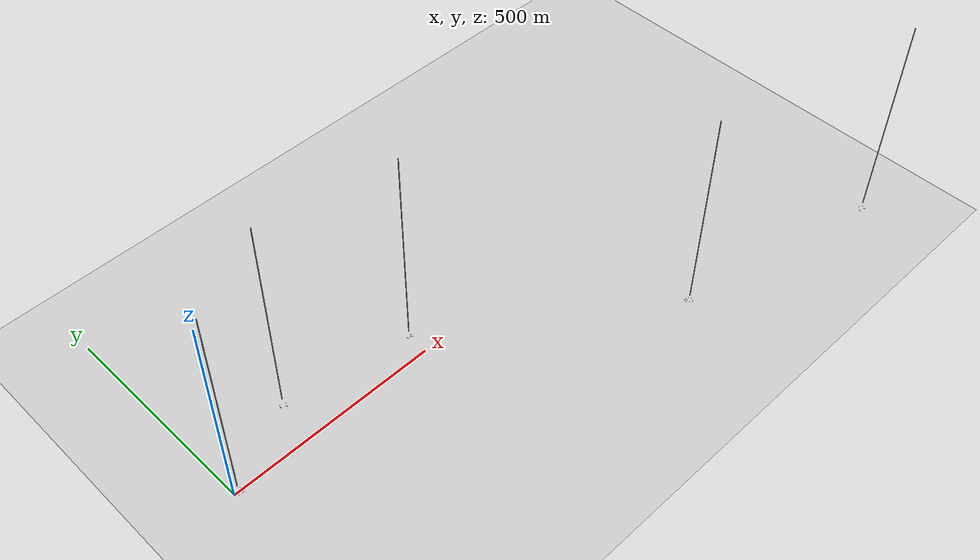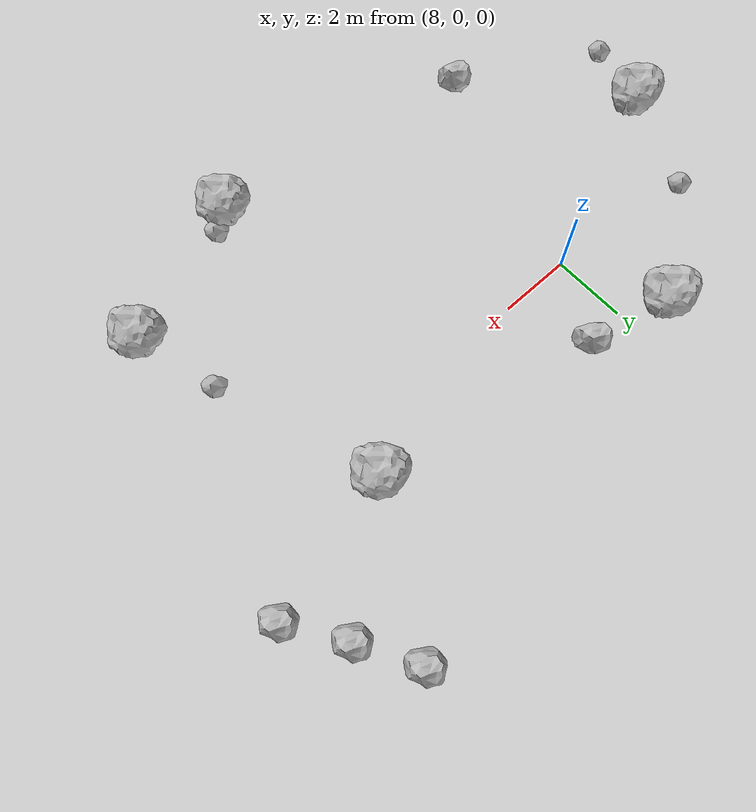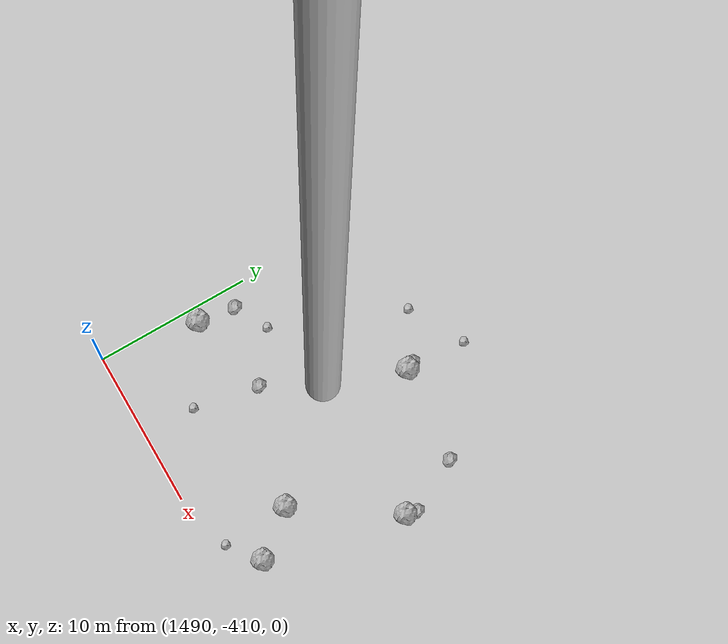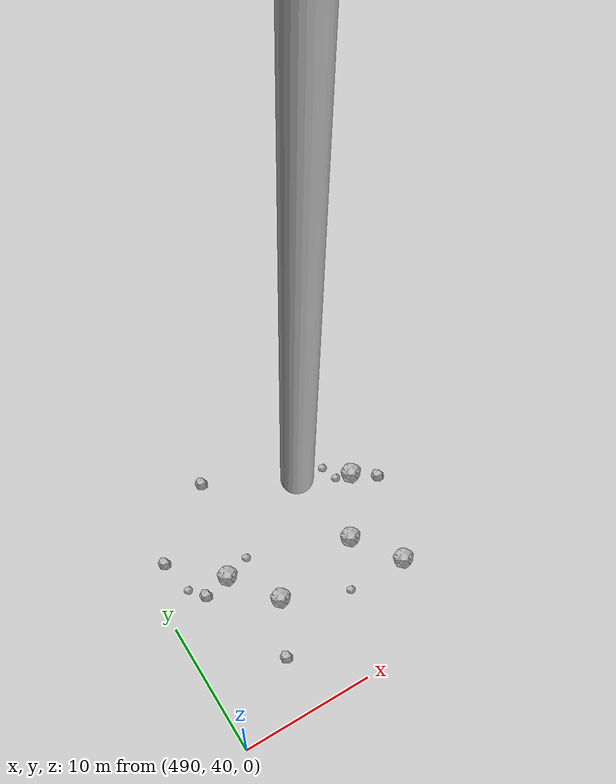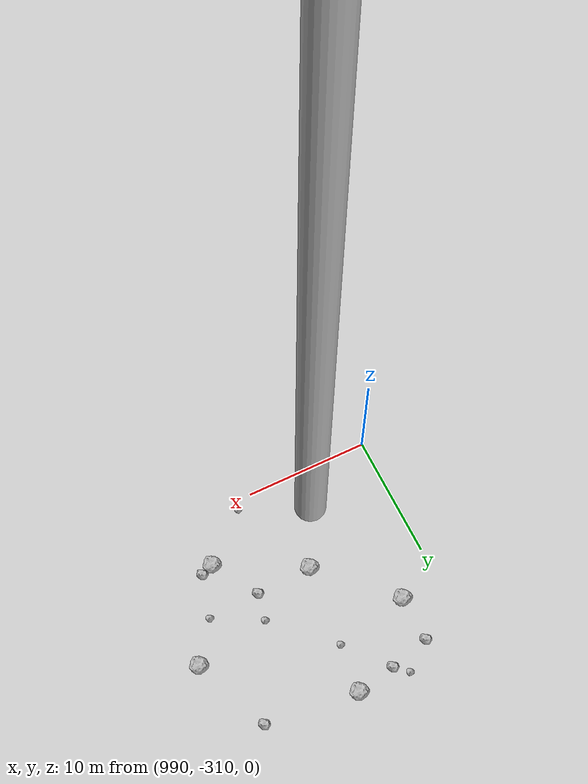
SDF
<?xml version="1.0" ?>
<sdf version="1.6">
  <world name="default">

    <include>
      <uri>model://custom_ground</uri>
    </include>

    <include>
      <uri>model://sun</uri>
    </include>

    <spherical_coordinates>
      <surface_model>EARTH_WGS84</surface_model>
      <latitude_deg>38.161479</latitude_deg>
      <longitude_deg>-122.454630</longitude_deg>
      <elevation>488.0</elevation>
      <heading_deg>90</heading_deg>
    </spherical_coordinates>

    <model name="rock1_0_0">
      <include>
        <uri>model://rock1</uri>
        <pose>6.878552019624888 2.563887295260024 0.5 0 0 0</pose>
      </include>
    </model>
    <model name="rock1_0_1">
      <include>
        <uri>model://rock1</uri>
        <pose>2.6409278544255543 -2.3622968119840015 0.5 0 0 0</pose>
      </include>
    </model>
    <model name="rock1_0_2">
      <include>
        <uri>model://rock1</uri>
        <pose>13.57423626528664 -7.366888080522269 0.5 0 0 0</pose>
      </include>
    </model>
    <model name="rock1_0_3">
      <include>
        <uri>model://rock1</uri>
        <pose>15.483504412664477 1.0716741729113455 0.5 0 0 0</pose>
      </include>
    </model>
    <model name="rock1_0_4">
      <include>
        <uri>model://rock1</uri>
        <pose>17.548800021996215 -5.739042391671112 0.5 0 0 0</pose>
      </include>
    </model>
    <model name="rock2_0_0">
      <include>
        <uri>model://rock2</uri>
        <pose>19.43197999454479 2.130272086964384 0.3 0 0 0</pose>
      </include>
    </model>
    <model name="rock2_0_1">
      <include>
        <uri>model://rock2</uri>
        <pose>5.904268603196094 -6.311359486827688 0.3 0 0 0</pose>
      </include>
    </model>
    <model name="rock2_0_2">
      <include>
        <uri>model://rock2</uri>
        <pose>18.504534774358174 3.5661157365428373 0.3 0 0 0</pose>
      </include>
    </model>
    <model name="rock2_0_3">
      <include>
        <uri>model://rock2</uri>
        <pose>17.669819956948515 5.039909348795042 0.3 0 0 0</pose>
      </include>
    </model>
    <model name="rock2_0_4">
      <include>
        <uri>model://rock2</uri>
        <pose>9.136354609493173 2.1091676606546272 0.3 0 0 0</pose>
      </include>
    </model>
    <model name="rock3_0_0">
      <include>
        <uri>model://rock3</uri>
        <pose>1.9908815236455912 -4.22846995532955 0.2 0 0 0</pose>
      </include>
    </model>
    <model name="rock3_0_1">
      <include>
        <uri>model://rock3</uri>
        <pose>14.154130225633326 -6.955207185265946 0.2 0 0 0</pose>
      </include>
    </model>
    <model name="rock3_0_2">
      <include>
        <uri>model://rock3</uri>
        <pose>16.962667398603138 -3.4221038509491226 0.2 0 0 0</pose>
      </include>
    </model>
    <model name="rock3_0_3">
      <include>
        <uri>model://rock3</uri>
        <pose>3.8190586870892274 0.44384562119414817 0.2 0 0 0</pose>
      </include>
    </model>
    <model name="rock3_0_4">
      <include>
        <uri>model://rock3</uri>
        <pose>17.276897302127328 -6.35914447149929 0.2 0 0 0</pose>
      </include>
    </model>
    <model name="rock1_1_0">
      <include>
        <uri>model://rock1</uri>
        <pose>206.4276627902904 99.77986212110447 0.5 0 0 0</pose>
      </include>
    </model>
    <model name="rock1_1_1">
      <include>
        <uri>model://rock1</uri>
        <pose>191.83948922866674 96.35535446125041 0.5 0 0 0</pose>
      </include>
    </model>
    <model name="rock1_1_2">
      <include>
        <uri>model://rock1</uri>
        <pose>203.48871534612329 91.00219823767296 0.5 0 0 0</pose>
      </include>
    </model>
    <model name="rock1_1_3">
      <include>
        <uri>model://rock1</uri>
        <pose>204.02831747094905 91.04204706046832 0.5 0 0 0</pose>
      </include>
    </model>
    <model name="rock1_1_4">
      <include>
        <uri>model://rock1</uri>
        <pose>192.19813956282746 98.38751318358752 0.5 0 0 0</pose>
      </include>
    </model>
    <model name="rock2_1_0">
      <include>
        <uri>model://rock2</uri>
        <pose>196.31038139833458 107.6514313217481 0.3 0 0 0</pose>
      </include>
    </model>
    <model name="rock2_1_1">
      <include>
        <uri>model://rock2</uri>
        <pose>207.73361639493018 100.36042247315325 0.3 0 0 0</pose>
      </include>
    </model>
    <model name="rock2_1_2">
      <include>
        <uri>model://rock2</uri>
        <pose>201.73494851251195 93.40523177852965 0.3 0 0 0</pose>
      </include>
    </model>
    <model name="rock2_1_3">
      <include>
        <uri>model://rock2</uri>
        <pose>203.00221048575588 104.26626786565183 0.3 0 0 0</pose>
      </include>
    </model>
    <model name="rock2_1_4">
      <include>
        <uri>model://rock2</uri>
        <pose>193.89066484362866 103.58921674458087 0.3 0 0 0</pose>
      </include>
    </model>
    <model name="rock3_1_0">
      <include>
        <uri>model://rock3</uri>
        <pose>193.5349950501354 94.43367804269474 0.2 0 0 0</pose>
      </include>
    </model>
    <model name="rock3_1_1">
      <include>
        <uri>model://rock3</uri>
        <pose>204.11128606224506 98.54829228431794 0.2 0 0 0</pose>
      </include>
    </model>
    <model name="rock3_1_2">
      <include>
        <uri>model://rock3</uri>
        <pose>203.42427191449795 103.69407037750231 0.2 0 0 0</pose>
      </include>
    </model>
    <model name="rock3_1_3">
      <include>
        <uri>model://rock3</uri>
        <pose>195.95660143977534 91.34247696274987 0.2 0 0 0</pose>
      </include>
    </model>
    <model name="rock3_1_4">
      <include>
        <uri>model://rock3</uri>
        <pose>207.31544784735746 95.80771486515252 0.2 0 0 0</pose>
      </include>
    </model>
    <model name="rock1_2_0">
      <include>
        <uri>model://rock1</uri>
        <pose>506.7878060705362 46.005005437053306 0.5 0 0 0</pose>
      </include>
    </model>
    <model name="rock1_2_1">
      <include>
        <uri>model://rock1</uri>
        <pose>506.93173383931753 53.48468951199003 0.5 0 0 0</pose>
      </include>
    </model>
    <model name="rock1_2_2">
      <include>
        <uri>model://rock1</uri>
        <pose>504.33396655615286 49.34847581197593 0.5 0 0 0</pose>
      </include>
    </model>
    <model name="rock1_2_3">
      <include>
        <uri>model://rock1</uri>
        <pose>495.17575641088644 51.43292749144444 0.5 0 0 0</pose>
      </include>
    </model>
    <model name="rock1_2_4">
      <include>
        <uri>model://rock1</uri>
        <pose>497.63973720359485 48.0500998300487 0.5 0 0 0</pose>
      </include>
    </model>
    <model name="rock2_2_0">
      <include>
        <uri>model://rock2</uri>
        <pose>493.0959596716754 51.00865559182785 0.3 0 0 0</pose>
      </include>
    </model>
    <model name="rock2_2_1">
      <include>
        <uri>model://rock2</uri>
        <pose>497.03122946455704 58.50899843398451 0.3 0 0 0</pose>
      </include>
    </model>
    <model name="rock2_2_2">
      <include>
        <uri>model://rock2</uri>
        <pose>491.7012085736961 54.616835019929376 0.3 0 0 0</pose>
      </include>
    </model>
    <model name="rock2_2_3">
      <include>
        <uri>model://rock2</uri>
        <pose>508.5163738359742 52.373572569025235 0.3 0 0 0</pose>
      </include>
    </model>
    <model name="rock2_2_4">
      <include>
        <uri>model://rock2</uri>
        <pose>495.75820809370197 44.1810875995795 0.3 0 0 0</pose>
      </include>
    </model>
    <model name="rock3_2_0">
      <include>
        <uri>model://rock3</uri>
        <pose>502.2930893558063 46.00141058921412 0.2 0 0 0</pose>
      </include>
    </model>
    <model name="rock3_2_1">
      <include>
        <uri>model://rock3</uri>
        <pose>492.18563083324614 52.00170631025976 0.2 0 0 0</pose>
      </include>
    </model>
    <model name="rock3_2_2">
      <include>
        <uri>model://rock3</uri>
        <pose>505.77535080936985 53.78468258327662 0.2 0 0 0</pose>
      </include>
    </model>
    <model name="rock3_2_3">
      <include>
        <uri>model://rock3</uri>
        <pose>505.33847308833117 54.95091476032771 0.2 0 0 0</pose>
      </include>
    </model>
    <model name="rock3_2_4">
      <include>
        <uri>model://rock3</uri>
        <pose>497.0178305312344 51.94226979534844 0.2 0 0 0</pose>
      </include>
    </model>
    <model name="rock1_3_0">
      <include>
        <uri>model://rock1</uri>
        <pose>998.5477161646663 -302.3984304392621 0.5 0 0 0</pose>
      </include>
    </model>
    <model name="rock1_3_1">
      <include>
        <uri>model://rock1</uri>
        <pose>993.2617585965145 -297.05420571353363 0.5 0 0 0</pose>
      </include>
    </model>
    <model name="rock1_3_2">
      <include>
        <uri>model://rock1</uri>
        <pose>999.5920459872776 -292.009861950625 0.5 0 0 0</pose>
      </include>
    </model>
    <model name="rock1_3_3">
      <include>
        <uri>model://rock1</uri>
        <pose>1009.4813178595598 -299.0688923639141 0.5 0 0 0</pose>
      </include>
    </model>
    <model name="rock1_3_4">
      <include>
        <uri>model://rock1</uri>
        <pose>1005.2336724445644 -305.89896818119234 0.5 0 0 0</pose>
      </include>
    </model>
    <model name="rock2_3_0">
      <include>
        <uri>model://rock2</uri>
        <pose>996.3947390028851 -292.5950395594092 0.3 0 0 0</pose>
      </include>
    </model>
    <model name="rock2_3_1">
      <include>
        <uri>model://rock2</uri>
        <pose>1006.2191991575405 -305.5474132721965 0.3 0 0 0</pose>
      </include>
    </model>
    <model name="rock2_3_2">
      <include>
        <uri>model://rock2</uri>
        <pose>993.1525482456212 -293.40008466388645 0.3 0 0 0</pose>
      </include>
    </model>
    <model name="rock2_3_3">
      <include>
        <uri>model://rock2</uri>
        <pose>1006.979931407565 -292.9145578374406 0.3 0 0 0</pose>
      </include>
    </model>
    <model name="rock2_3_4">
      <include>
        <uri>model://rock2</uri>
        <pose>1003.003900152544 -302.292344552287 0.3 0 0 0</pose>
      </include>
    </model>
    <model name="rock3_3_0">
      <include>
        <uri>model://rock3</uri>
        <pose>1007.1513034505491 -302.1581356418597 0.2 0 0 0</pose>
      </include>
    </model>
    <model name="rock3_3_1">
      <include>
        <uri>model://rock3</uri>
        <pose>1001.3942914111585 -309.28088839128014 0.2 0 0 0</pose>
      </include>
    </model>
    <model name="rock3_3_2">
      <include>
        <uri>model://rock3</uri>
        <pose>1003.4243870370933 -300.1471505722264 0.2 0 0 0</pose>
      </include>
    </model>
    <model name="rock3_3_3">
      <include>
        <uri>model://rock3</uri>
        <pose>995.3825859138761 -291.718759209294 0.2 0 0 0</pose>
      </include>
    </model>
    <model name="rock3_3_4">
      <include>
        <uri>model://rock3</uri>
        <pose>999.1147310560991 -295.91489439217975 0.2 0 0 0</pose>
      </include>
    </model>
    <model name="rock1_4_0">
      <include>
        <uri>model://rock1</uri>
        <pose>1507.6607883784307 -398.4442829568897 0.5 0 0 0</pose>
      </include>
    </model>
    <model name="rock1_4_1">
      <include>
        <uri>model://rock1</uri>
        <pose>1503.581351240258 -404.66690547925697 0.5 0 0 0</pose>
      </include>
    </model>
    <model name="rock1_4_2">
      <include>
        <uri>model://rock1</uri>
        <pose>1490.900688371426 -403.6960787104414 0.5 0 0 0</pose>
      </include>
    </model>
    <model name="rock1_4_3">
      <include>
        <uri>model://rock1</uri>
        <pose>1499.8935769282584 -393.85523272904004 0.5 0 0 0</pose>
      </include>
    </model>
    <model name="rock1_4_4">
      <include>
        <uri>model://rock1</uri>
        <pose>1505.7683618439253 -407.49320820553675 0.5 0 0 0</pose>
      </include>
    </model>
    <model name="rock2_4_0">
      <include>
        <uri>model://rock2</uri>
        <pose>1507.8129146760614 -397.7129253979199 0.3 0 0 0</pose>
      </include>
    </model>
    <model name="rock2_4_1">
      <include>
        <uri>model://rock2</uri>
        <pose>1496.2321811592967 -402.37072926575263 0.3 0 0 0</pose>
      </include>
    </model>
    <model name="rock2_4_2">
      <include>
        <uri>model://rock2</uri>
        <pose>1499.6524358656238 -393.3807651547543 0.3 0 0 0</pose>
      </include>
    </model>
    <model name="rock2_4_3">
      <include>
        <uri>model://rock2</uri>
        <pose>1506.039440939599 -394.38828461295657 0.3 0 0 0</pose>
      </include>
    </model>
    <model name="rock2_4_4">
      <include>
        <uri>model://rock2</uri>
        <pose>1491.2210628320354 -401.2702029830372 0.3 0 0 0</pose>
      </include>
    </model>
    <model name="rock3_4_0">
      <include>
        <uri>model://rock3</uri>
        <pose>1503.792726799584 -409.0368647984341 0.2 0 0 0</pose>
      </include>
    </model>
    <model name="rock3_4_1">
      <include>
        <uri>model://rock3</uri>
        <pose>1496.6155957641936 -391.979320399447 0.2 0 0 0</pose>
      </include>
    </model>
    <model name="rock3_4_2">
      <include>
        <uri>model://rock3</uri>
        <pose>1495.4338754022228 -406.6082687526562 0.2 0 0 0</pose>
      </include>
    </model>
    <model name="rock3_4_3">
      <include>
        <uri>model://rock3</uri>
        <pose>1493.3038773600476 -400.16416306266484 0.2 0 0 0</pose>
      </include>
    </model>
    <model name="rock3_4_4">
      <include>
        <uri>model://rock3</uri>
        <pose>1500.0896967425992 -390.008861986516 0.2 0 0 0</pose>
      </include>
    </model>

    <model name="cylinder_1">
      <static>true</static>
      <link name="link">
        <visual name="visual">
          <geometry>
            <cylinder>
              <radius>1</radius>
              <length>500</length>
            </cylinder>
          </geometry>
        </visual>
      </link>
      <pose>10 0 270 0 0 0</pose>
    </model>

    <model name="cylinder_2">
      <static>true</static>
      <link name="link">
        <visual name="visual">
          <geometry>
            <cylinder>
              <radius>1</radius>
              <length>500</length>
            </cylinder>
          </geometry>
        </visual>
      </link>
      <pose>200 100 270 0 0 0</pose>
    </model>

    <model name="cylinder_3">
      <static>true</static>
      <link name="link">
        <visual name="visual">
          <geometry>
            <cylinder>
              <radius>1</radius>
              <length>500</length>
            </cylinder>
          </geometry>
        </visual>
      </link>
      <pose>500 50 270 0 0 0</pose>
    </model>

    <model name="cylinder_4">
      <static>true</static>
      <link name="link">
        <visual name="visual">
          <geometry>
            <cylinder>
              <radius>1</radius>
              <length>500</length>
            </cylinder>
          </geometry>
        </visual>
      </link>
      <pose>1000 -300 270 0 0 0</pose>
    </model>

    <model name="cylinder_5">
      <static>true</static>
      <link name="link">
        <visual name="visual">
          <geometry>
            <cylinder>
              <radius>1</radius>
              <length>500</length>
            </cylinder>
          </geometry>
        </visual>
      </link>
      <pose>1500 -400 270 0 0 0</pose>
    </model>

  </world>
</sdf>

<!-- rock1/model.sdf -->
<sdf version="1.6">
  <model name="rock1">
    <static>true</static> <!-- Set to true if the model should not move -->
    <pose>0 0 0 0 0 0</pose>

    <!--z offset is 0.5 for full scale-->

    <link name="link">
      <collision name="rock1_collision">
        <geometry>
          <mesh>
            <uri>model://meshes/rock1.dae</uri>
          </mesh>
        </geometry>
      </collision>
      <visual name="rock1_visual">
        <geometry>
          <mesh>
            <uri>model://meshes/rock1.dae</uri>
          </mesh>
        </geometry>
        <material>
          <script>
            <uri>model://materials/scripts/sand_pebbles.material</uri>
            <name>custom_ground/Image</name>
          </script>
        </material>
      </visual>
    </link>
  </model>
</sdf>

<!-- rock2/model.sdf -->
<sdf version="1.6">
  <model name="rock2">
    <static>true</static> <!-- Set to true if the model should not move -->
    <pose>0 0 0 0 0 0</pose>

    <!--z offset is 0.3 for full scale-->

    <link name="link">
      <collision name="rock2_collision">
        <geometry>
          <mesh>
            <uri>model://meshes/rock2.dae</uri>
          </mesh>
        </geometry>
      </collision>
      <visual name="rock2_visual">
        <geometry>
          <mesh>
            <uri>model://meshes/rock2.dae</uri>
          </mesh>
        </geometry>
        <material>
          <script>
            <uri>model://materials/scripts/sand_pebbles.material</uri>
            <name>custom_ground/Image</name>
          </script>
        </material>
      </visual>
    </link>
  </model>
</sdf>

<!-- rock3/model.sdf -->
<sdf version="1.6">
  <model name="rock3">
    <static>true</static> <!-- Set to true if the model should not move -->
    <pose>0 0 0 0 0 0</pose>

    <!--z offset is 0.2 for full scale-->

    <link name="link">
      <collision name="rock3_collision">
        <geometry>
          <mesh>
            <uri>model://meshes/rock3.dae</uri>
          </mesh>
        </geometry>
      </collision>
      <visual name="rock3_visual">
        <geometry>
          <mesh>
            <uri>model://meshes/rock3.dae</uri>
          </mesh>
        </geometry>
        <material>
          <script>
            <uri>model://materials/scripts/sand_pebbles.material</uri>
            <name>custom_ground/Image</name>
          </script>
        </material>
      </visual>
    </link>
  </model>
</sdf>

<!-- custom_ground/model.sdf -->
<sdf version="1.6">
  <model name="custom_ground">
    <static>true</static> <!-- Ground is static and immovable -->
    <link name="ground_link">
      <pose>240 0 0 0 0 0</pose> <!-- Position and orientation relative to the world -->
      <!-- Visual Representation -->
      <visual name="ground_visual">
        <geometry>
          <plane>
            <normal>0 0 1</normal> <!-- Upward facing plane -->
            <size>500 500</size> <!-- Size of the plane -->
          </plane>
        </geometry>
        <material>
          <script>
            <uri>model://materials/scripts/sand_pebbles.material</uri>
            <name>custom_ground/Image</name>
          </script>
        </material>
      </visual>

      <!-- Collision Representation -->
      <collision name="ground_collision">
        <geometry>
          <plane>
            <normal>0 0 1</normal>
            <size>100 100</size>
          </plane>
        </geometry>
      </collision>

    </link>
  </model>
</sdf>
